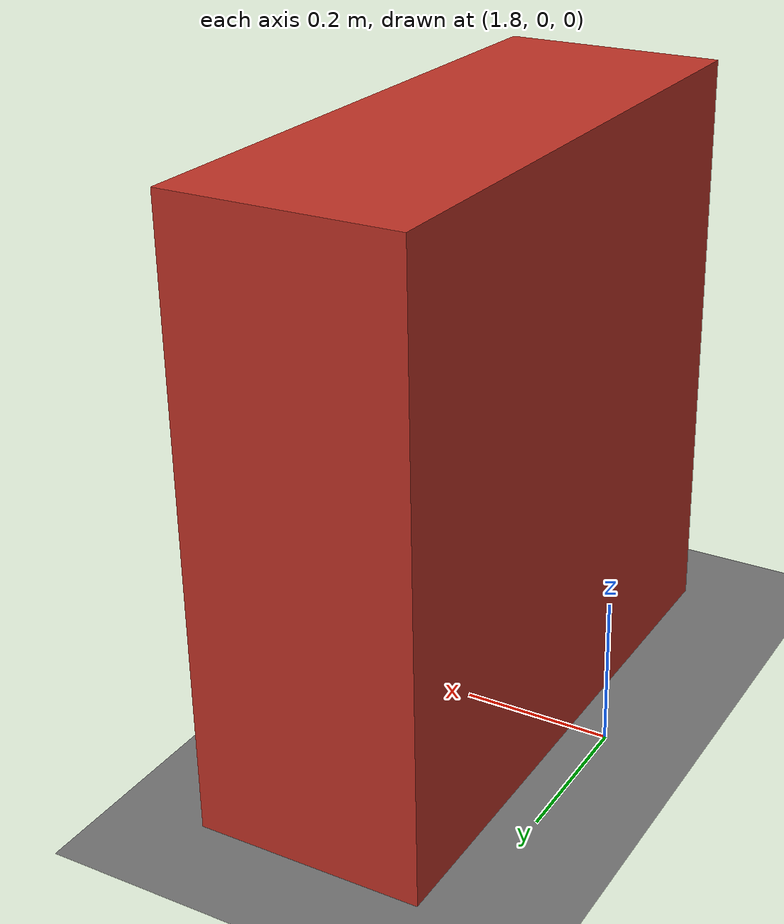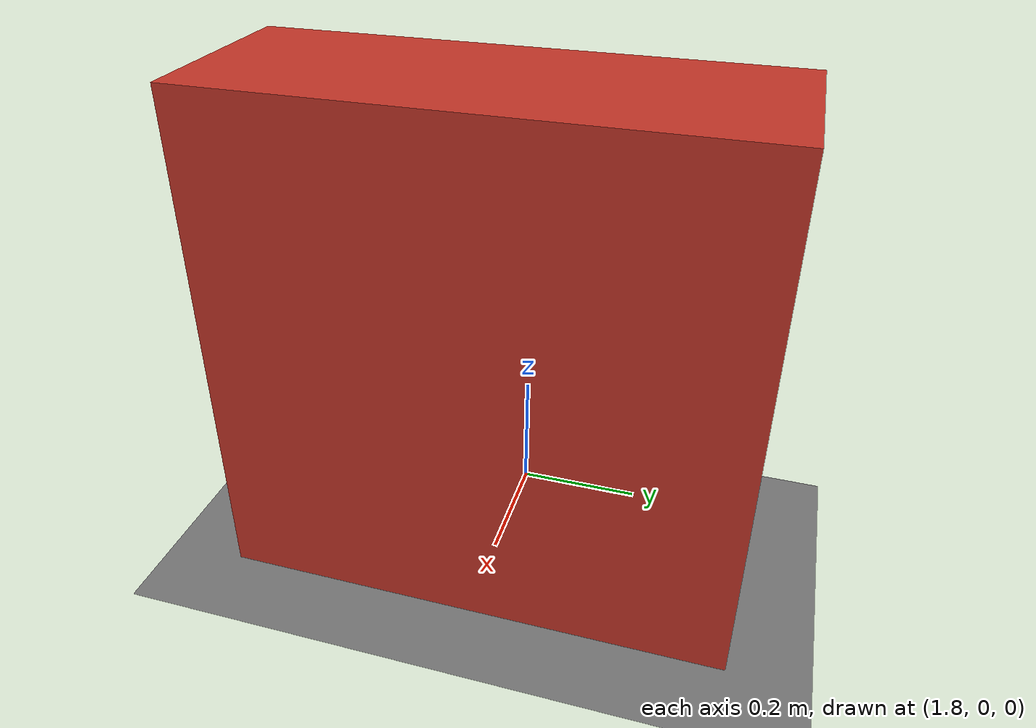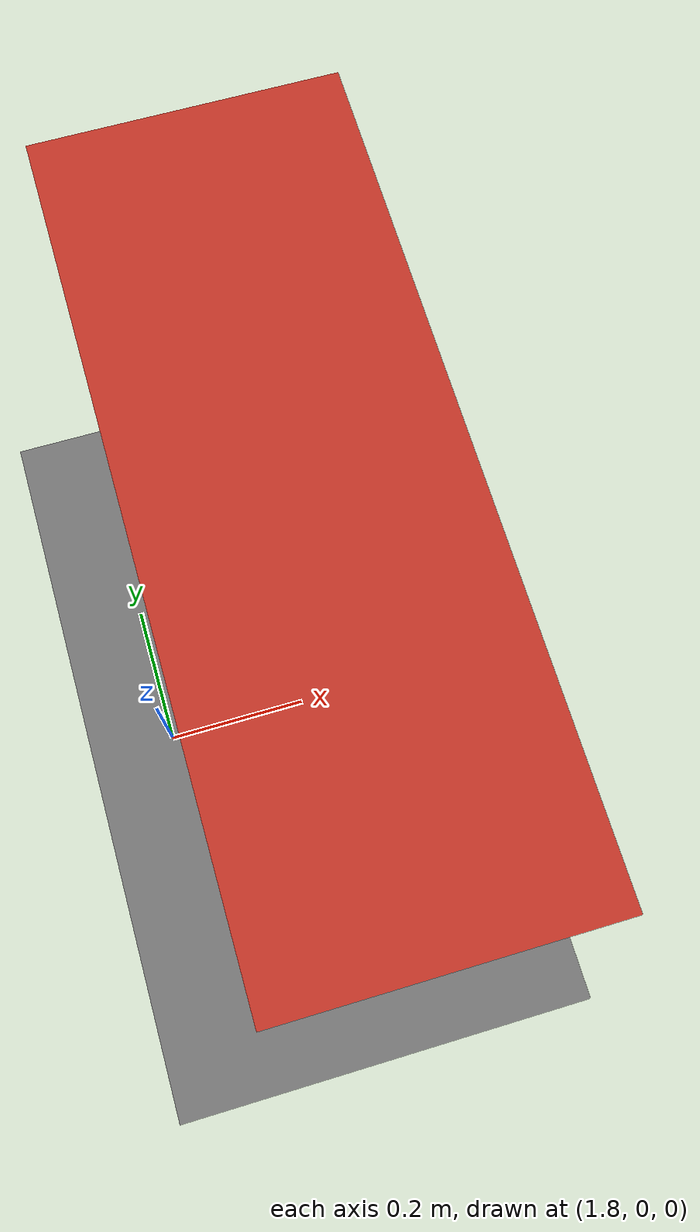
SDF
<?xml version="1.0" ?>
<sdf version="1.9">
  <world name="empty">

    <physics name="default_physics" type="ignored">
      <max_step_size>0.001</max_step_size>
      <real_time_factor>1.0</real_time_factor>
    </physics>

    <plugin filename="gz-sim-physics-system"
            name="gz::sim::systems::Physics"/>
    <plugin filename="gz-sim-user-commands-system"
            name="gz::sim::systems::UserCommands"/>
    <plugin filename="gz-sim-scene-broadcaster-system"
            name="gz::sim::systems::SceneBroadcaster"/>
    <plugin filename="gz-sim-sensors-system"
            name="gz::sim::systems::Sensors">
      <render_engine>ogre2</render_engine>
    </plugin>

    <light type="directional" name="sun">
      <pose>0 0 10 0 0 0</pose>
      <cast_shadows>true</cast_shadows>
      <diffuse>0.8 0.8 0.8 1</diffuse>
      <specular>0.2 0.2 0.2 1</specular>
      <direction>-0.5 0.1 -0.9</direction>
    </light>

    <model name="ground_plane">
      <static>true</static>
      <link name="link">
        <collision name="collision">
          <geometry>
            <plane>
              <normal>0 0 1</normal>
              <size>20 20</size>
            </plane>
          </geometry>
        </collision>
        <visual name="visual">
          <geometry>
            <plane>
              <normal>0 0 1</normal>
              <size>20 20</size>
            </plane>
          </geometry>
          <material>
            <ambient>0.25 0.25 0.25 1</ambient>
            <diffuse>0.45 0.45 0.45 1</diffuse>
          </material>
        </visual>
      </link>
    </model>

    <model name="front_obstacle">
      <static>true</static>
      <pose>2.0 0 0.40 0 0 0</pose>

      <link name="link">
        <collision name="collision">
          <geometry>
            <box>
              <size>0.30 0.80 0.80</size>
            </box>
          </geometry>
        </collision>

        <visual name="visual">
          <geometry>
            <box>
              <size>0.30 0.80 0.80</size>
            </box>
          </geometry>
          <material>
            <diffuse>0.75 0.20 0.15 1</diffuse>
          </material>
        </visual>
      </link>
    </model>

  </world>
</sdf>
